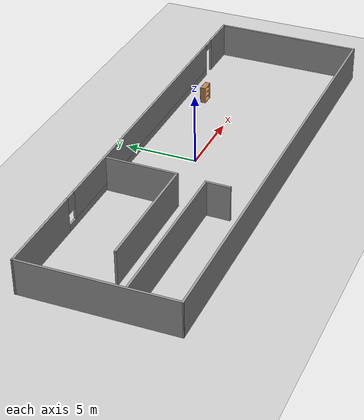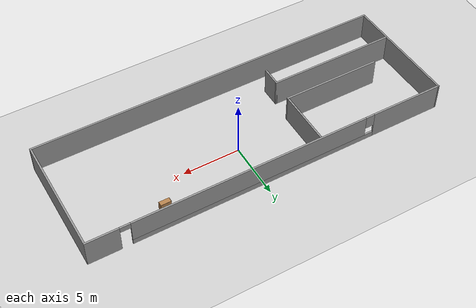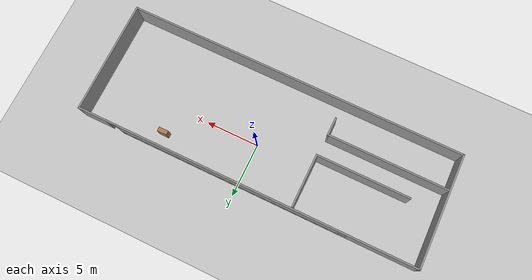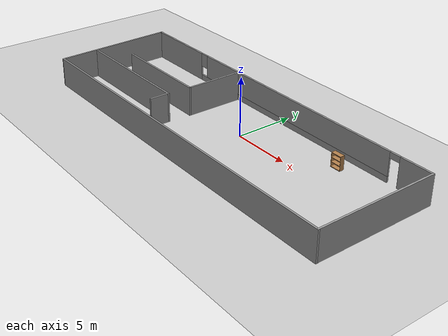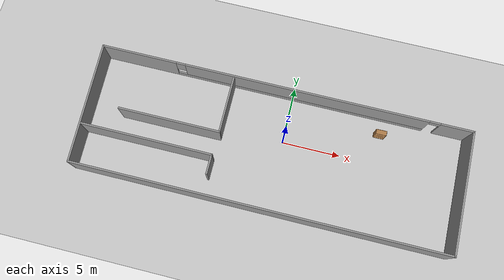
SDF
<sdf version="1.7">
 <world name="default">
  <light name="sun" type="directional">
   <pose>0 0 10 0 -0 0</pose>
   <diffuse>0.8 0.8 0.8 1</diffuse>
   <specular>0.2 0.2 0.2 1</specular>
   <attenuation>
    <range>1000</range>
    <constant>0.9</constant>
    <linear>0.01</linear>
    <quadratic>0.001</quadratic>
   </attenuation>
   <direction>-0.5 0.1 -0.9</direction>
   <spot><inner_angle>0</inner_angle><outer_angle>0</outer_angle><falloff>0</falloff></spot>
  </light>
  <model name="ground_plane">
   <static>1</static>
   <link name="link">
    <collision name="collision">
     <geometry><plane><normal>0 0 1</normal><size>100 100</size></plane></geometry>
     <surface><friction><ode><mu>100</mu><mu2>50</mu2></ode></friction></surface>
    </collision>
    <visual name="visual">
     <cast_shadows>0</cast_shadows>
     <geometry><plane><normal>0 0 1</normal><size>100 100</size></plane></geometry>
     <material>
      <script><uri>file://media/materials/scripts/gazebo.material</uri><name>Gazebo/Grey</name></script>
     </material>
    </visual>
   </link>
  </model>
  <gravity>0 0 -9.8</gravity>
  <magnetic_field>6e-06 2.3e-05 -4.2e-05</magnetic_field>
  <atmosphere type="adiabatic"/>
  <physics type="ode">
   <max_step_size>0.001</max_step_size>
   <real_time_factor>1</real_time_factor>
   <real_time_update_rate>1000</real_time_update_rate>
  </physics>
  <scene><ambient>0.4 0.4 0.4 1</ambient><background>0.7 0.7 0.7 1</background><shadows>1</shadows></scene>
  <audio><device>default</device></audio>
  <spherical_coordinates>
   <surface_model>EARTH_WGS84</surface_model>
   <latitude_deg>0</latitude_deg>
   <longitude_deg>0</longitude_deg>
   <elevation>0</elevation>
   <heading_deg>0</heading_deg>
  </spherical_coordinates>
  <model name="ball_bearing">
   <link name="link">
    <pose>0 0 0.003 0 -0 0</pose>
    <inertial>
     <mass>0.0011</mass>
     <inertia>
      <ixx>3.96e-09</ixx>
      <ixy>0</ixy>
      <ixz>0</ixz>
      <iyy>3.96e-09</iyy>
      <iyz>0</iyz>
      <izz>3.96e-09</izz>
     </inertia>
    </inertial>
    <collision name="collision">
     <geometry><sphere><radius>0.003</radius></sphere></geometry>
     <surface>
      <contact>
       <poissons_ratio>0.305</poissons_ratio>
       <elastic_modulus>2e+11</elastic_modulus>
       <ode><kp>100000</kp><kd>100</kd><max_vel>100</max_vel><min_depth>0.001</min_depth></ode>
      </contact>
      <friction>
       <torsional>
        <coefficient>1</coefficient>
        <use_patch_radius>0</use_patch_radius>
        <surface_radius>0.01</surface_radius>
       </torsional>
      </friction>
     </surface>
    </collision>
    <visual name="visual">
     <geometry><sphere><radius>0.003</radius></sphere></geometry>
     <material>
      <script><uri>file://media/materials/scripts/gazebo.material</uri><name>Gazebo/Grey</name></script>
     </material>
    </visual>
    <velocity_decay><linear>0</linear><angular>0.005</angular></velocity_decay>
   </link>
   <pose>-21.2122 -5.94287 -0.001 0 -0 0</pose>
  </model>
  <model name="new_wall">
   <pose>-0.852437 -1.15272 0 0 -0 0</pose>
   <link name="Wall_10">
    <collision name="Wall_10_Collision">
     <geometry><box><size>8.75 0.15 2.5</size></box></geometry>
     <pose>0 0 1.25 0 -0 0</pose>
    </collision>
    <visual name="Wall_10_Visual">
     <pose>0 0 1.25 0 -0 0</pose>
     <geometry><box><size>8.75 0.15 2.5</size></box></geometry>
     <material>
      <script><uri>file://media/materials/scripts/gazebo.material</uri><name>Gazebo/Grey</name></script>
      <ambient>1 1 1 1</ambient>
     </material>
     <meta><layer>0</layer></meta>
    </visual>
    <pose>-8.69587 0.157704 0 0 -0 3.14159</pose>
   </link>
   <link name="Wall_12">
    <collision name="Wall_12_Collision">
     <geometry><box><size>11.25 0.15 2.5</size></box></geometry>
     <pose>0 0 1.25 0 -0 0</pose>
    </collision>
    <visual name="Wall_12_Visual">
     <pose>0 0 1.25 0 -0 0</pose>
     <geometry><box><size>11.25 0.15 2.5</size></box></geometry>
     <material>
      <script><uri>file://media/materials/scripts/gazebo.material</uri><name>Gazebo/Grey</name></script>
      <ambient>1 1 1 1</ambient>
     </material>
     <meta><layer>0</layer></meta>
    </visual>
    <pose>-10.0699 -1.85144 0 0 -0 0</pose>
   </link>
   <link name="Wall_13">
    <collision name="Wall_13_Collision">
     <geometry><box><size>1.75 0.15 2.5</size></box></geometry>
     <pose>0 0 1.25 0 -0 0</pose>
    </collision>
    <visual name="Wall_13_Visual">
     <pose>0 0 1.25 0 -0 0</pose>
     <geometry><box><size>1.75 0.15 2.5</size></box></geometry>
     <material>
      <script><uri>file://media/materials/scripts/gazebo.material</uri><name>Gazebo/Grey</name></script>
      <ambient>1 1 1 1</ambient>
     </material>
     <meta><layer>0</layer></meta>
    </visual>
    <pose>-4.51993 -2.65144 0 0 -0 -1.5708</pose>
   </link>
   <link name="Wall_4">
    <pose>0.000894 5.175 0 0 -0 0</pose>
    <visual name="Wall_4_Visual_0">
     <pose>-12.7329 0 1.25 0 -0 0</pose>
     <geometry><box><size>6.53415 0.15 2.5</size></box></geometry>
     <material>
      <script><uri>file://media/materials/scripts/gazebo.material</uri><name>Gazebo/Grey</name></script>
      <ambient>1 1 1 1</ambient>
     </material>
     <meta><layer>0</layer></meta>
    </visual>
    <collision name="Wall_4_Collision_0">
     <geometry><box><size>6.53415 0.15 2.5</size></box></geometry>
     <pose>-12.7329 0 1.25 0 -0 0</pose>
    </collision>
    <visual name="Wall_4_Visual_1">
     <pose>14.5815 0 1.25 0 -0 0</pose>
     <geometry><box><size>2.83692 0.15 2.5</size></box></geometry>
     <material>
      <script><uri>file://media/materials/scripts/gazebo.material</uri><name>Gazebo/Grey</name></script>
      <ambient>1 1 1 1</ambient>
     </material>
     <meta><layer>0</layer></meta>
    </visual>
    <collision name="Wall_4_Collision_1">
     <geometry><box><size>2.83692 0.15 2.5</size></box></geometry>
     <pose>14.5815 0 1.25 0 -0 0</pose>
    </collision>
    <visual name="Wall_4_Visual_2">
     <pose>1.39861 0 0.25 0 -0 0</pose>
     <geometry><box><size>21.7289 0.15 0.5</size></box></geometry>
     <material>
      <script><uri>file://media/materials/scripts/gazebo.material</uri><name>Gazebo/Grey</name></script>
      <ambient>1 1 1 1</ambient>
     </material>
     <meta><layer>0</layer></meta>
    </visual>
    <collision name="Wall_4_Collision_2">
     <geometry><box><size>21.7289 0.15 0.5</size></box></geometry>
     <pose>1.39861 0 0.25 0 -0 0</pose>
    </collision>
    <visual name="Wall_4_Visual_3">
     <pose>1.79861 0 1.5 0 -0 0</pose>
     <geometry><box><size>20.9289 0.15 2</size></box></geometry>
     <material>
      <script><uri>file://media/materials/scripts/gazebo.material</uri><name>Gazebo/Grey</name></script>
      <ambient>1 1 1 1</ambient>
     </material>
     <meta><layer>0</layer></meta>
    </visual>
    <collision name="Wall_4_Collision_3">
     <geometry><box><size>20.9289 0.15 2</size></box></geometry>
     <pose>1.79861 0 1.5 0 -0 0</pose>
    </collision>
    <visual name="Wall_4_Visual_4">
     <pose>-9.06585 0 1.9 0 -0 0</pose>
     <geometry><box><size>0.8 0.15 1.2</size></box></geometry>
     <material>
      <script><uri>file://media/materials/scripts/gazebo.material</uri><name>Gazebo/Grey</name></script>
      <ambient>1 1 1 1</ambient>
     </material>
     <meta><layer>0</layer></meta>
    </visual>
    <collision name="Wall_4_Collision_4">
     <geometry><box><size>0.8 0.15 1.2</size></box></geometry>
     <pose>-9.06585 0 1.9 0 -0 0</pose>
    </collision>
    <visual name="Wall_4_Visual_5">
     <pose>12.7131 0 2.25 0 -0 0</pose>
     <geometry><box><size>0.9 0.15 0.5</size></box></geometry>
     <material>
      <script><uri>file://media/materials/scripts/gazebo.material</uri><name>Gazebo/Grey</name></script>
      <ambient>1 1 1 1</ambient>
     </material>
     <meta><layer>0</layer></meta>
    </visual>
    <collision name="Wall_4_Collision_5">
     <geometry><box><size>0.9 0.15 0.5</size></box></geometry>
     <pose>12.7131 0 2.25 0 -0 0</pose>
    </collision>
   </link>
   <link name="Wall_5">
    <collision name="Wall_5_Collision">
     <geometry><box><size>10.5 0.15 2.5</size></box></geometry>
     <pose>0 0 1.25 0 -0 0</pose>
    </collision>
    <visual name="Wall_5_Visual">
     <pose>0 0 1.25 0 -0 0</pose>
     <geometry><box><size>10.5 0.15 2.5</size></box></geometry>
     <material>
      <script><uri>file://media/materials/scripts/gazebo.material</uri><name>Gazebo/Grey</name></script>
      <ambient>1 1 1 1</ambient>
     </material>
     <meta><layer>0</layer></meta>
    </visual>
    <pose>15.9259 0 0 0 -0 -1.5708</pose>
   </link>
   <link name="Wall_6">
    <collision name="Wall_6_Collision">
     <geometry><box><size>31.75 0.15 2.5</size></box></geometry>
     <pose>0 0 1.25 0 -0 0</pose>
    </collision>
    <visual name="Wall_6_Visual">
     <pose>0 0 1.25 0 -0 0</pose>
     <geometry><box><size>31.75 0.15 2.5</size></box></geometry>
     <material>
      <script><uri>file://media/materials/scripts/gazebo.material</uri><name>Gazebo/Grey</name></script>
      <ambient>1 1 1 1</ambient>
     </material>
     <meta><layer>0</layer></meta>
    </visual>
    <pose>0.125894 -5.175 0 0 -0 3.14159</pose>
   </link>
   <link name="Wall_7">
    <collision name="Wall_7_Collision">
     <geometry><box><size>10.503 0.15 2.5</size></box></geometry>
     <pose>0 0 1.25 0 -0 0</pose>
    </collision>
    <visual name="Wall_7_Visual">
     <pose>0 0 1.25 0 -0 0</pose>
     <geometry><box><size>10.503 0.15 2.5</size></box></geometry>
     <material>
      <script><uri>file://media/materials/scripts/gazebo.material</uri><name>Gazebo/Grey</name></script>
      <ambient>1 1 1 1</ambient>
     </material>
     <meta><layer>0</layer></meta>
    </visual>
    <pose>-15.7991 0 0 0 -0 1.59495</pose>
   </link>
   <link name="Wall_9">
    <collision name="Wall_9_Collision">
     <geometry><box><size>5 0.15 2.5</size></box></geometry>
     <pose>0 0 1.25 0 -0 0</pose>
    </collision>
    <visual name="Wall_9_Visual">
     <pose>0 0 1.25 0 -0 0</pose>
     <geometry><box><size>5 0.15 2.5</size></box></geometry>
     <material>
      <script><uri>file://media/materials/scripts/gazebo.material</uri><name>Gazebo/Grey</name></script>
      <ambient>1 1 1 1</ambient>
     </material>
     <meta><layer>0</layer></meta>
    </visual>
    <pose>-4.39587 2.5827 0 0 -0 -1.5708</pose>
   </link>
   <static>1</static>
  </model>
  <model name="bookshelf">
   <static>1</static>
   <link name="link">
    <inertial><mass>1</mass></inertial>
    <collision name="back">
     <pose>0 0.005 0.6 0 -0 0</pose>
     <geometry><box><size>0.9 0.01 1.2</size></box></geometry>
    </collision>
    <visual name="visual1">
     <pose>0 0.005 0.6 0 -0 0</pose>
     <geometry><box><size>0.9 0.01 1.2</size></box></geometry>
     <material>
      <script><uri>file://media/materials/scripts/gazebo.material</uri><name>Gazebo/Wood</name></script>
     </material>
    </visual>
    <collision name="left_side">
     <pose>0.45 -0.195 0.6 0 -0 0</pose>
     <geometry><box><size>0.02 0.4 1.2</size></box></geometry>
    </collision>
    <visual name="visual2">
     <pose>0.45 -0.195 0.6 0 -0 0</pose>
     <geometry><box><size>0.02 0.4 1.2</size></box></geometry>
     <material>
      <script><uri>file://media/materials/scripts/gazebo.material</uri><name>Gazebo/Wood</name></script>
     </material>
    </visual>
    <collision name="right_side">
     <pose>-0.45 -0.195 0.6 0 -0 0</pose>
     <geometry><box><size>0.02 0.4 1.2</size></box></geometry>
    </collision>
    <visual name="visual3">
     <pose>-0.45 -0.195 0.6 0 -0 0</pose>
     <geometry><box><size>0.02 0.4 1.2</size></box></geometry>
     <material>
      <script><uri>file://media/materials/scripts/gazebo.material</uri><name>Gazebo/Wood</name></script>
     </material>
    </visual>
    <collision name="bottom">
     <pose>0 -0.195 0.03 0 -0 0</pose>
     <geometry><box><size>0.88 0.4 0.06</size></box></geometry>
    </collision>
    <visual name="visual4">
     <pose>0 -0.195 0.03 0 -0 0</pose>
     <geometry><box><size>0.88 0.4 0.06</size></box></geometry>
     <material>
      <script><uri>file://media/materials/scripts/gazebo.material</uri><name>Gazebo/Wood</name></script>
     </material>
    </visual>
    <collision name="top">
     <pose>0 -0.195 1.19 0 -0 0</pose>
     <geometry><box><size>0.88 0.4 0.02</size></box></geometry>
    </collision>
    <visual name="visual5">
     <pose>0 -0.195 1.19 0 -0 0</pose>
     <geometry><box><size>0.88 0.4 0.02</size></box></geometry>
     <material>
      <script><uri>file://media/materials/scripts/gazebo.material</uri><name>Gazebo/Wood</name></script>
     </material>
    </visual>
    <collision name="low_shelf">
     <pose>0 -0.195 0.43 0 -0 0</pose>
     <geometry><box><size>0.88 0.4 0.02</size></box></geometry>
    </collision>
    <visual name="visual6">
     <pose>0 -0.195 0.43 0 -0 0</pose>
     <geometry><box><size>0.88 0.4 0.02</size></box></geometry>
     <material>
      <script><uri>file://media/materials/scripts/gazebo.material</uri><name>Gazebo/Wood</name></script>
     </material>
    </visual>
    <collision name="high_shelf">
     <pose>0 -0.195 0.8 0 -0 0</pose>
     <geometry><box><size>0.88 0.4 0.02</size></box></geometry>
    </collision>
    <visual name="visual7">
     <pose>0 -0.195 0.8 0 -0 0</pose>
     <geometry><box><size>0.88 0.4 0.02</size></box></geometry>
     <material>
      <script><uri>file://media/materials/scripts/gazebo.material</uri><name>Gazebo/Wood</name></script>
     </material>
    </visual>
   </link>
   <pose>7.933 2.77769 0 0 -0 0</pose>
  </model>
  <model name="ball_bearing_0">
   <link name="link">
    <pose>0 0 0.003 0 -0 0</pose>
    <inertial>
     <mass>0.0011</mass>
     <inertia>
      <ixx>3.96e-09</ixx>
      <ixy>0</ixy>
      <ixz>0</ixz>
      <iyy>3.96e-09</iyy>
      <iyz>0</iyz>
      <izz>3.96e-09</izz>
     </inertia>
    </inertial>
    <collision name="collision">
     <geometry><sphere><radius>0.003</radius></sphere></geometry>
     <surface>
      <contact>
       <poissons_ratio>0.305</poissons_ratio>
       <elastic_modulus>2e+11</elastic_modulus>
       <ode><kp>100000</kp><kd>100</kd><max_vel>100</max_vel><min_depth>0.001</min_depth></ode>
      </contact>
      <friction>
       <torsional>
        <coefficient>1</coefficient>
        <use_patch_radius>0</use_patch_radius>
        <surface_radius>0.01</surface_radius>
       </torsional>
      </friction>
     </surface>
    </collision>
    <visual name="visual">
     <geometry><sphere><radius>0.003</radius></sphere></geometry>
     <material>
      <script><uri>file://media/materials/scripts/gazebo.material</uri><name>Gazebo/Grey</name></script>
     </material>
    </visual>
    <velocity_decay><linear>0</linear><angular>0.005</angular></velocity_decay>
   </link>
   <pose>-1.82322 0.313071 -0.000172 0 -0 0</pose>
  </model>
 </world>
</sdf>
